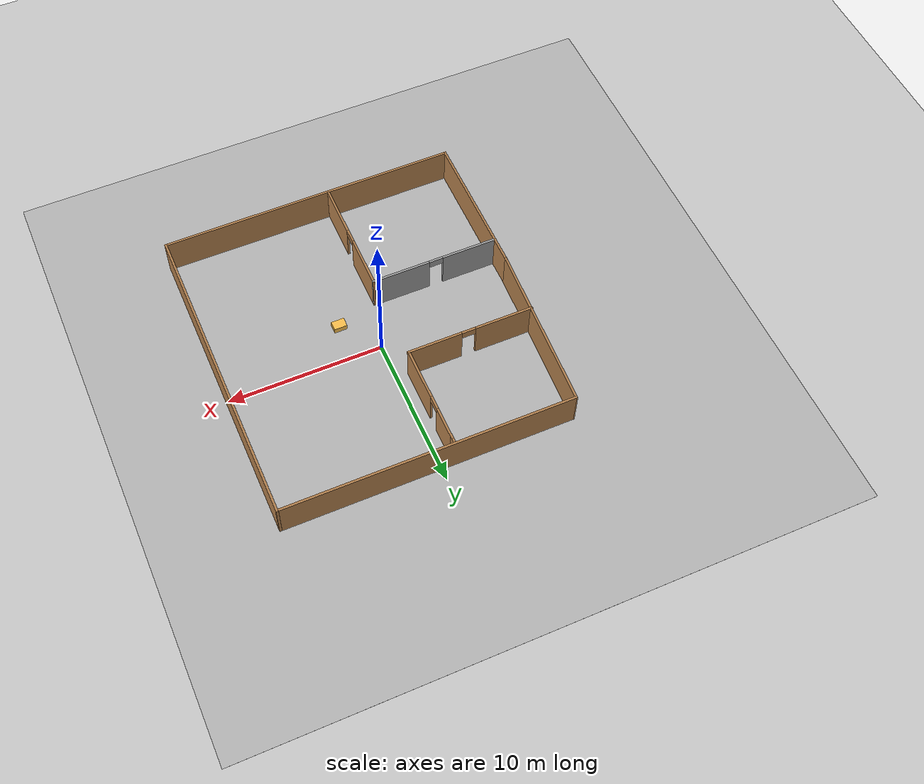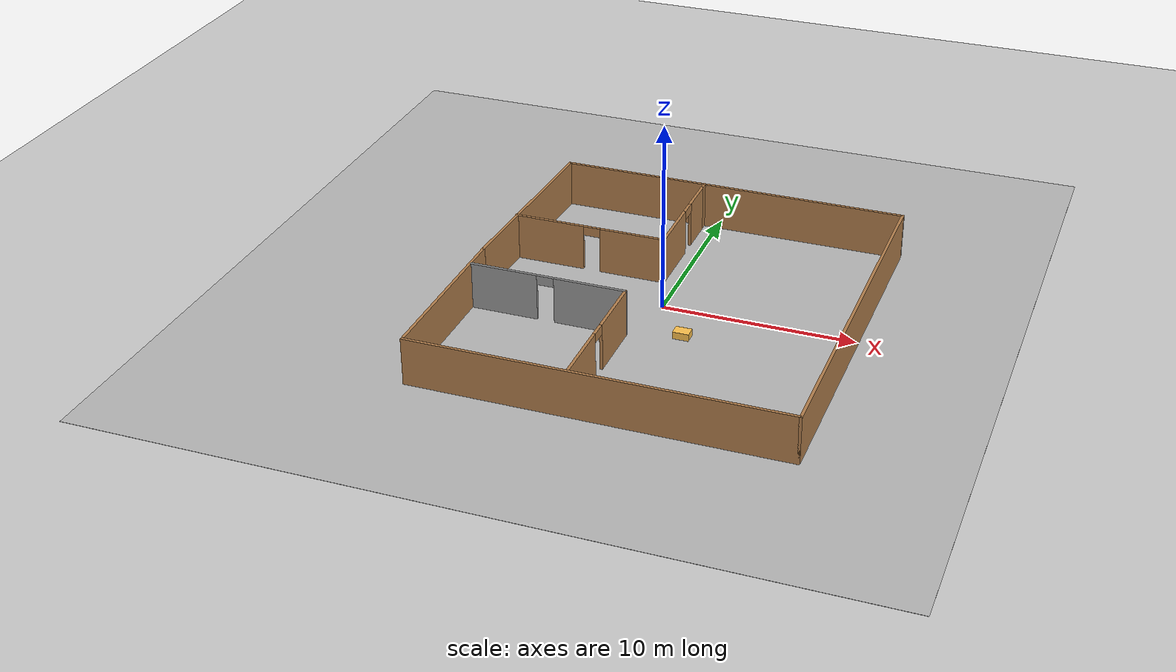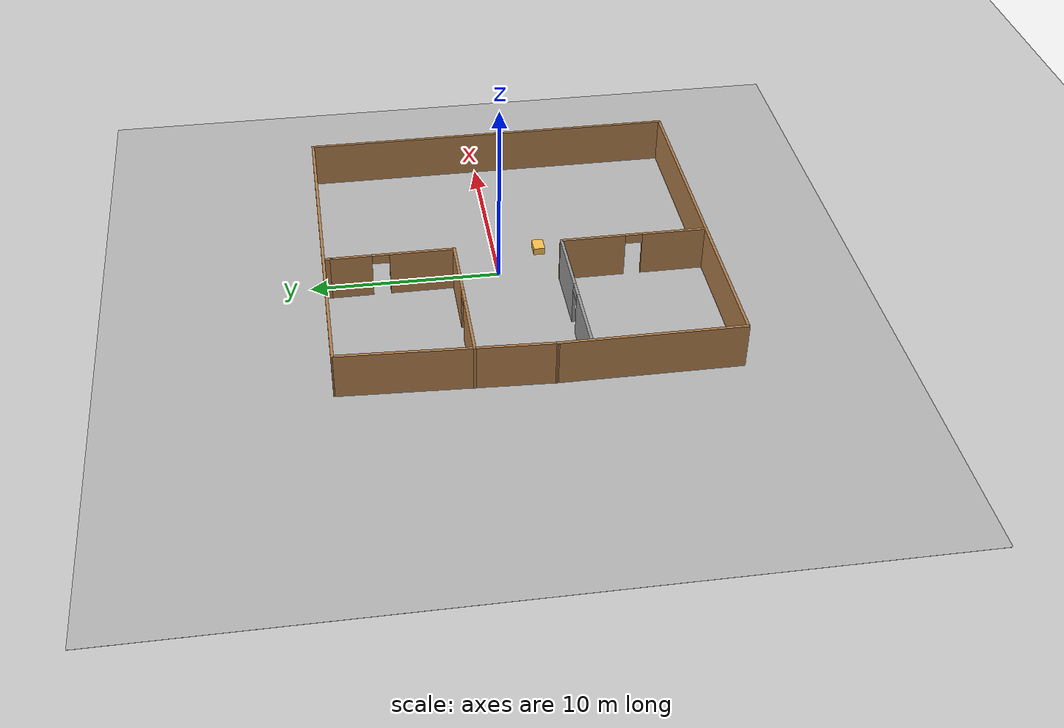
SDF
<sdf version="1.7">
 <world name="default">
  <light name="sun" type="directional">
   <pose>0 0 10 0 -0 0</pose>
   <diffuse>0.8 0.8 0.8 1</diffuse>
   <specular>0.2 0.2 0.2 1</specular>
   <attenuation>
    <range>1000</range>
    <constant>0.9</constant>
    <linear>0.01</linear>
    <quadratic>0.001</quadratic>
   </attenuation>
   <direction>-0.5 0.1 -0.9</direction>
   <spot><inner_angle>0</inner_angle><outer_angle>0</outer_angle><falloff>0</falloff></spot>
  </light>
  <model name="ground_plane">
   <static>1</static>
   <link name="link">
    <collision name="collision">
     <geometry><plane><normal>0 0 1</normal><size>100 100</size></plane></geometry>
     <surface><friction><ode><mu>100</mu><mu2>50</mu2></ode></friction></surface>
    </collision>
    <visual name="visual">
     <cast_shadows>0</cast_shadows>
     <geometry><plane><normal>0 0 1</normal><size>100 100</size></plane></geometry>
     <material>
      <script><uri>file://media/materials/scripts/gazebo.material</uri><name>Gazebo/Grey</name></script>
     </material>
    </visual>
   </link>
  </model>
  <gravity>0 0 -9.8</gravity>
  <magnetic_field>6e-06 2.3e-05 -4.2e-05</magnetic_field>
  <atmosphere type="adiabatic"/>
  <physics type="ode">
   <max_step_size>0.001</max_step_size>
   <real_time_factor>1</real_time_factor>
   <real_time_update_rate>1000</real_time_update_rate>
  </physics>
  <scene><ambient>0.4 0.4 0.4 1</ambient><background>0.7 0.7 0.7 1</background><shadows>1</shadows></scene>
  <spherical_coordinates>
   <surface_model>EARTH_WGS84</surface_model>
   <latitude_deg>0</latitude_deg>
   <longitude_deg>0</longitude_deg>
   <elevation>0</elevation>
   <heading_deg>0</heading_deg>
  </spherical_coordinates>
  <model name="nha">
   <pose>0.506852 -0.819999 0 0 -0 0</pose>
   <link name="Wall_0">
    <collision name="Wall_0_Collision">
     <geometry><box><size>9.5 0.15 2.5</size></box></geometry>
     <pose>0 0 1.25 0 -0 0</pose>
    </collision>
    <visual name="Wall_0_Visual">
     <pose>0 0 1.25 0 -0 0</pose>
     <geometry><box><size>9.5 0.15 2.5</size></box></geometry>
     <material>
      <script><uri>file://media/materials/scripts/gazebo.material</uri><name>Gazebo/Wood</name></script>
      <ambient>1 1 1 1</ambient>
     </material>
     <meta><layer>0</layer></meta>
    </visual>
    <pose>-9.5483 -5.3767 0 0 -0 -1.5708</pose>
   </link>
   <link name="Wall_1">
    <collision name="Wall_1_Collision">
     <geometry><box><size>19.25 0.15 2.5</size></box></geometry>
     <pose>0 0 1.25 0 -0 0</pose>
    </collision>
    <visual name="Wall_1_Visual">
     <pose>0 0 1.25 0 -0 0</pose>
     <geometry><box><size>19.25 0.15 2.5</size></box></geometry>
     <material>
      <script><uri>file://media/materials/scripts/gazebo.material</uri><name>Gazebo/Wood</name></script>
      <ambient>1 1 1 1</ambient>
     </material>
     <meta><layer>0</layer></meta>
    </visual>
    <pose>0.001702 -10.0517 0 0 -0 0</pose>
   </link>
   <link name="Wall_10">
    <pose>-1.33635 -6.13715 0 0 -0 1.5708</pose>
    <visual name="Wall_10_Visual_0">
     <pose>-2.1859 0 1.25 0 -0 0</pose>
     <geometry><box><size>3.3782 0.15 2.5</size></box></geometry>
     <material>
      <script><uri>file://media/materials/scripts/gazebo.material</uri><name>Gazebo/Wood</name></script>
      <ambient>1 1 1 1</ambient>
     </material>
     <meta><layer>0</layer></meta>
    </visual>
    <collision name="Wall_10_Collision_0">
     <geometry><box><size>3.3782 0.15 2.5</size></box></geometry>
     <pose>-2.1859 0 1.25 0 -0 0</pose>
    </collision>
    <visual name="Wall_10_Visual_1">
     <pose>2.1391 0 1.25 0 -0 0</pose>
     <geometry><box><size>3.4718 0.15 2.5</size></box></geometry>
     <material>
      <script><uri>file://media/materials/scripts/gazebo.material</uri><name>Gazebo/Wood</name></script>
      <ambient>1 1 1 1</ambient>
     </material>
     <meta><layer>0</layer></meta>
    </visual>
    <collision name="Wall_10_Collision_1">
     <geometry><box><size>3.4718 0.15 2.5</size></box></geometry>
     <pose>2.1391 0 1.25 0 -0 0</pose>
    </collision>
    <visual name="Wall_10_Visual_2">
     <pose>-0.046799 0 2.25 0 -0 0</pose>
     <geometry><box><size>0.9 0.15 0.5</size></box></geometry>
     <material>
      <script><uri>file://media/materials/scripts/gazebo.material</uri><name>Gazebo/Wood</name></script>
      <ambient>1 1 1 1</ambient>
     </material>
     <meta><layer>0</layer></meta>
    </visual>
    <collision name="Wall_10_Collision_2">
     <geometry><box><size>0.9 0.15 0.5</size></box></geometry>
     <pose>-0.046799 0 2.25 0 -0 0</pose>
    </collision>
   </link>
   <link name="Wall_11">
    <pose>-5.38635 -2.33715 0 0 -0 3.14159</pose>
    <visual name="Wall_11_Visual_0">
     <pose>-2.22055 0 1.25 0 -0 0</pose>
     <geometry><box><size>3.8089 0.15 2.5</size></box></geometry>
     <material>
      <script><uri>file://media/materials/scripts/gazebo.material</uri><name>Gazebo/Grey</name></script>
      <ambient>1 1 1 1</ambient>
     </material>
     <meta><layer>0</layer></meta>
    </visual>
    <collision name="Wall_11_Collision_0">
     <geometry><box><size>3.8089 0.15 2.5</size></box></geometry>
     <pose>-2.22055 0 1.25 0 -0 0</pose>
    </collision>
    <visual name="Wall_11_Visual_1">
     <pose>2.35445 0 1.25 0 -0 0</pose>
     <geometry><box><size>3.5411 0.15 2.5</size></box></geometry>
     <material>
      <script><uri>file://media/materials/scripts/gazebo.material</uri><name>Gazebo/Grey</name></script>
      <ambient>1 1 1 1</ambient>
     </material>
     <meta><layer>0</layer></meta>
    </visual>
    <collision name="Wall_11_Collision_1">
     <geometry><box><size>3.5411 0.15 2.5</size></box></geometry>
     <pose>2.35445 0 1.25 0 -0 0</pose>
    </collision>
    <visual name="Wall_11_Visual_2">
     <pose>0.133896 0 2.25 0 -0 0</pose>
     <geometry><box><size>0.9 0.15 0.5</size></box></geometry>
     <material>
      <script><uri>file://media/materials/scripts/gazebo.material</uri><name>Gazebo/Grey</name></script>
      <ambient>1 1 1 1</ambient>
     </material>
     <meta><layer>0</layer></meta>
    </visual>
    <collision name="Wall_11_Collision_2">
     <geometry><box><size>0.9 0.15 0.5</size></box></geometry>
     <pose>0.133896 0 2.25 0 -0 0</pose>
    </collision>
   </link>
   <link name="Wall_2">
    <collision name="Wall_2_Collision">
     <geometry><box><size>20.25 0.15 2.5</size></box></geometry>
     <pose>0 0 1.25 0 -0 0</pose>
    </collision>
    <visual name="Wall_2_Visual">
     <pose>0 0 1.25 0 -0 0</pose>
     <geometry><box><size>20.25 0.15 2.5</size></box></geometry>
     <material>
      <script><uri>file://media/materials/scripts/gazebo.material</uri><name>Gazebo/Wood</name></script>
      <ambient>1 1 1 1</ambient>
     </material>
     <meta><layer>0</layer></meta>
    </visual>
    <pose>9.5517 -0.001702 0 0 -0 1.5708</pose>
   </link>
   <link name="Wall_3">
    <collision name="Wall_3_Collision">
     <geometry><box><size>18.75 0.15 2.5</size></box></geometry>
     <pose>0 0 1.25 0 -0 0</pose>
    </collision>
    <visual name="Wall_3_Visual">
     <pose>0 0 1.25 0 -0 0</pose>
     <geometry><box><size>18.75 0.15 2.5</size></box></geometry>
     <material>
      <script><uri>file://media/materials/scripts/gazebo.material</uri><name>Gazebo/Wood</name></script>
      <ambient>1 1 1 1</ambient>
     </material>
     <meta><layer>0</layer></meta>
    </visual>
    <pose>0.251702 10.0483 0 0 -0 3.14159</pose>
   </link>
   <link name="Wall_4">
    <collision name="Wall_4_Collision">
     <geometry><box><size>10.9116 0.15 2.5</size></box></geometry>
     <pose>0 0 1.25 0 -0 0</pose>
    </collision>
    <visual name="Wall_4_Visual">
     <pose>0 0 1.25 0 -0 0</pose>
     <geometry><box><size>10.9116 0.15 2.5</size></box></geometry>
     <material>
      <script><uri>file://media/materials/scripts/gazebo.material</uri><name>Gazebo/Wood</name></script>
      <ambient>1 1 1 1</ambient>
     </material>
     <meta><layer>0</layer></meta>
    </visual>
    <pose>-9.2983 4.6733 0 0 -0 -1.61727</pose>
   </link>
   <link name="Wall_6">
    <pose>-5.3465 3.29134 0 0 -0 0</pose>
    <visual name="Wall_6_Visual_0">
     <pose>-2.22055 0 1.25 0 -0 0</pose>
     <geometry><box><size>3.8089 0.15 2.5</size></box></geometry>
     <material>
      <script><uri>file://media/materials/scripts/gazebo.material</uri><name>Gazebo/Wood</name></script>
      <ambient>1 1 1 1</ambient>
     </material>
     <meta><layer>0</layer></meta>
    </visual>
    <collision name="Wall_6_Collision_0">
     <geometry><box><size>3.8089 0.15 2.5</size></box></geometry>
     <pose>-2.22055 0 1.25 0 -0 0</pose>
    </collision>
    <visual name="Wall_6_Visual_1">
     <pose>2.35445 0 1.25 0 -0 0</pose>
     <geometry><box><size>3.5411 0.15 2.5</size></box></geometry>
     <material>
      <script><uri>file://media/materials/scripts/gazebo.material</uri><name>Gazebo/Wood</name></script>
      <ambient>1 1 1 1</ambient>
     </material>
     <meta><layer>0</layer></meta>
    </visual>
    <collision name="Wall_6_Collision_1">
     <geometry><box><size>3.5411 0.15 2.5</size></box></geometry>
     <pose>2.35445 0 1.25 0 -0 0</pose>
    </collision>
    <visual name="Wall_6_Visual_2">
     <pose>0.133896 0 2.25 0 -0 0</pose>
     <geometry><box><size>0.9 0.15 0.5</size></box></geometry>
     <material>
      <script><uri>file://media/materials/scripts/gazebo.material</uri><name>Gazebo/Wood</name></script>
      <ambient>1 1 1 1</ambient>
     </material>
     <meta><layer>0</layer></meta>
    </visual>
    <collision name="Wall_6_Collision_2">
     <geometry><box><size>0.9 0.15 0.5</size></box></geometry>
     <pose>0.133896 0 2.25 0 -0 0</pose>
    </collision>
   </link>
   <link name="Wall_7">
    <pose>-1.2965 6.46634 0 0 -0 1.5708</pose>
    <visual name="Wall_7_Visual_0">
     <pose>-1.53014 0 1.25 0 -0 0</pose>
     <geometry><box><size>3.43973 0.15 2.5</size></box></geometry>
     <material>
      <script><uri>file://media/materials/scripts/gazebo.material</uri><name>Gazebo/Wood</name></script>
      <ambient>1 1 1 1</ambient>
     </material>
     <meta><layer>0</layer></meta>
    </visual>
    <collision name="Wall_7_Collision_0">
     <geometry><box><size>3.43973 0.15 2.5</size></box></geometry>
     <pose>-1.53014 0 1.25 0 -0 0</pose>
    </collision>
    <visual name="Wall_7_Visual_1">
     <pose>2.16986 0 1.25 0 -0 0</pose>
     <geometry><box><size>2.16027 0.15 2.5</size></box></geometry>
     <material>
      <script><uri>file://media/materials/scripts/gazebo.material</uri><name>Gazebo/Wood</name></script>
      <ambient>1 1 1 1</ambient>
     </material>
     <meta><layer>0</layer></meta>
    </visual>
    <collision name="Wall_7_Collision_1">
     <geometry><box><size>2.16027 0.15 2.5</size></box></geometry>
     <pose>2.16986 0 1.25 0 -0 0</pose>
    </collision>
    <visual name="Wall_7_Visual_2">
     <pose>0.639728 0 2.25 0 -0 0</pose>
     <geometry><box><size>0.9 0.15 0.5</size></box></geometry>
     <material>
      <script><uri>file://media/materials/scripts/gazebo.material</uri><name>Gazebo/Wood</name></script>
      <ambient>1 1 1 1</ambient>
     </material>
     <meta><layer>0</layer></meta>
    </visual>
    <collision name="Wall_7_Collision_2">
     <geometry><box><size>0.9 0.15 0.5</size></box></geometry>
     <pose>0.639728 0 2.25 0 -0 0</pose>
    </collision>
   </link>
   <link name="Wall_8">
    <collision name="Wall_8_Collision">
     <geometry><box><size>0.5 0.15 2.5</size></box></geometry>
     <pose>0 0 1.25 0 -0 0</pose>
    </collision>
    <visual name="Wall_8_Visual">
     <pose>0 0 1.25 0 -0 0</pose>
     <geometry><box><size>0.5 0.15 2.5</size></box></geometry>
     <material>
      <script><uri>file://media/materials/scripts/gazebo.material</uri><name>Gazebo/Wood</name></script>
      <ambient>1 1 1 1</ambient>
     </material>
     <meta><layer>0</layer></meta>
    </visual>
    <pose>-1.2965 9.81634 0 0 -0 1.5708</pose>
   </link>
   <static>1</static>
  </model>
  <model name="Floor">
   <link name="main">
    <pose>0 0 0.01 0 -0 0</pose>
    <collision name="main_Collision"><geometry><box><size>40 40 0.01</size></box></geometry></collision>
    <visual name="main_Visual">
     <geometry><box><size>40 40 0.01</size></box></geometry>
     <material>
      <script>
       <uri>model://Floor/materials/scripts</uri>
       <uri>model://Floor/materials/textures</uri>
       <name>floor</name>
      </script>
     </material>
    </visual>
   </link>
   <static>1</static>
   <pose>-2.4061 0.872459 0 0 -0 0</pose>
  </model>
  <model name="Box_33x15">
   <link name="Wall">
    <pose>0 0 0.1985 0 -0 0</pose>
    <inertial>
     <mass>5</mass>
     <inertia><ixx>0.2157</ixx><iyy>0.3597</iyy><izz>0.444</izz><ixy>0</ixy><ixz>0</ixz><iyz>0</iyz></inertia>
    </inertial>
    <collision name="Wall_Collision"><geometry><box><size>0.84 0.6 0.397</size></box></geometry></collision>
    <visual name="Wall_Visual">
     <geometry><box><size>0.84 0.6 0.397</size></box></geometry>
     <material>
      <script><uri>file://media/materials/scripts/gazebo.material</uri><name>Gazebo/Grey</name></script>
      <ambient>1 0.764706 0.305882 1</ambient>
     </material>
    </visual>
   </link>
   <static>1</static>
   <pose>1.85787 -2.41107 0 0 -0 0</pose>
  </model>
 </world>
</sdf>
